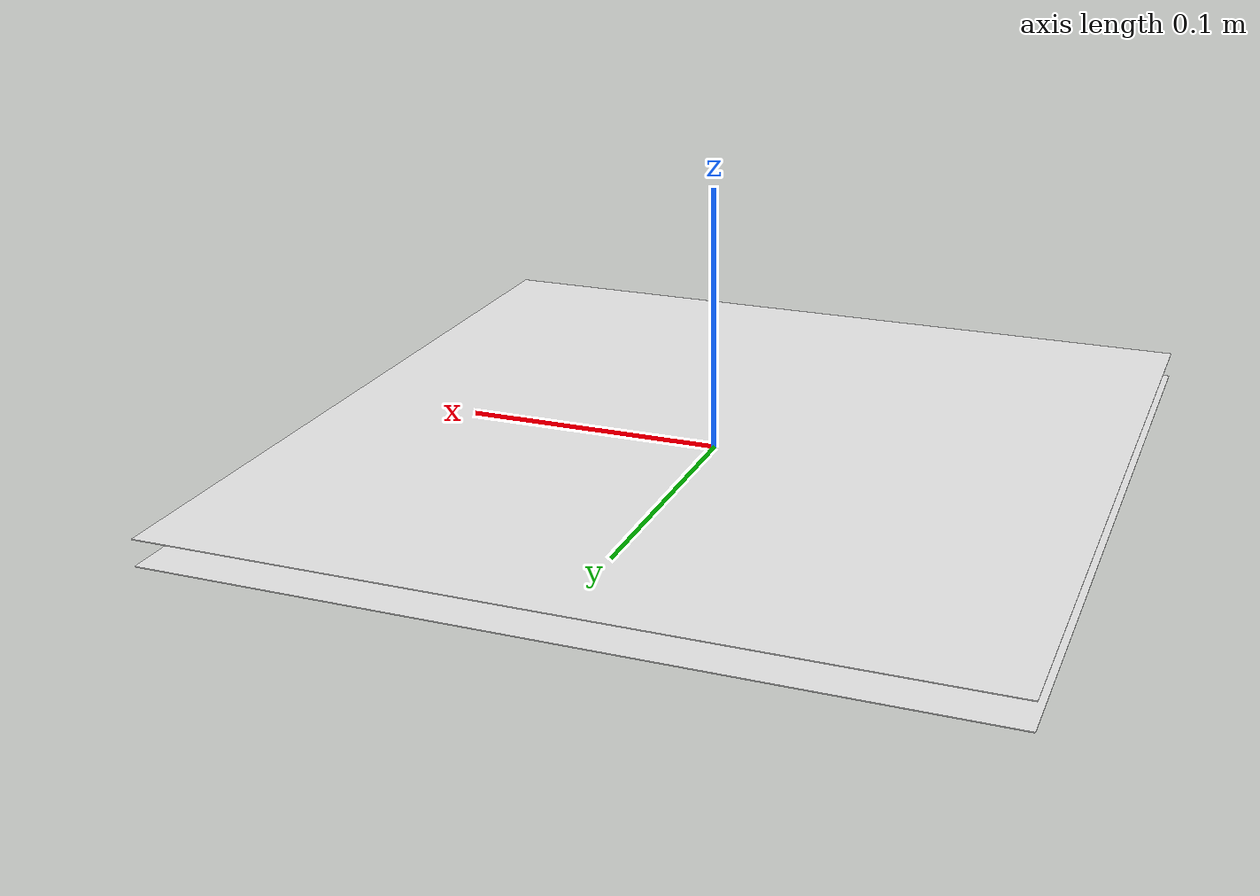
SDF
<?xml version="1.0" ?>
<sdf version="1.7">
    <model name="aruco_id_60">
        <static>true</static>
        <link name="marker_link">
            <visual name="front_face">
                <pose>0 0 0.005 0 0 0</pose>
                <geometry>
                    <plane>
                        <normal>0 0 1</normal>
                        <size>0.3 0.3</size>
                    </plane>
                </geometry>
                <material>
                    <ambient>1 1 1 1</ambient>
                    <diffuse>1 1 1 1</diffuse>
                    <pbr>
                        <metal>
                            <albedo_map>file://model://aruco_id_60/materials/textures/60.png</albedo_map>
                            <metalness>0.0</metalness>
                            <roughness>1.0</roughness>
                        </metal>
                    </pbr>
                </material>
            </visual>
            <visual name="back_face">
                <pose>0 0 -0.005 0 0 0</pose>
                <geometry>
                    <plane>
                        <normal>0 0 -1</normal>
                        <size>0.3 0.3</size>
                    </plane>
                </geometry>
                <material>
                    <ambient>1 1 1 1</ambient>
                    <diffuse>1 1 1 1</diffuse>
                    <pbr>
                        <metal>
                            <albedo_map>file://model://aruco_id_60/materials/textures/60.png</albedo_map>
                            <metalness>0.0</metalness>
                            <roughness>1.0</roughness>
                        </metal>
                    </pbr>
                </material>
            </visual>
            <collision name="collision">
                <geometry>
                    <box>
                        <size>0.3 0.3 0.01</size>
                    </box>
                </geometry>
            </collision>
        </link>
    </model>
</sdf>
